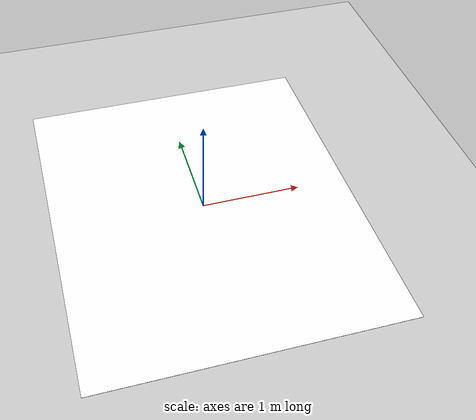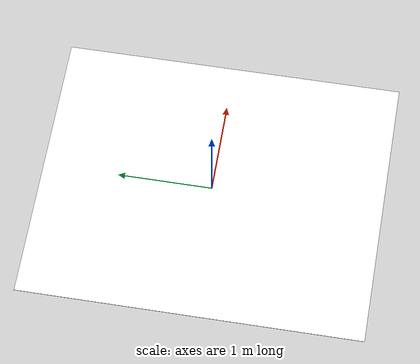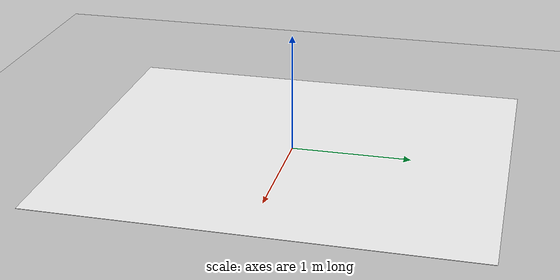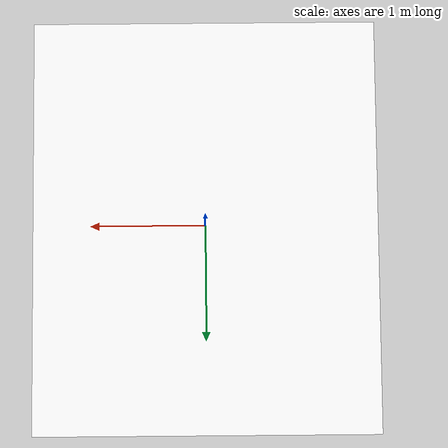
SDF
<sdf version='1.10'>
  <world name='linefollow'>
    <physics name='1ms' type='ignored'>
      <max_step_size>0.001</max_step_size>
      <real_time_factor>1</real_time_factor>
      <real_time_update_rate>1000</real_time_update_rate>
    </physics>
    <plugin name='gz::sim::systems::Physics' filename='gz-sim-physics-system'/>
    <plugin name='gz::sim::systems::UserCommands' filename='gz-sim-user-commands-system'/>
    <plugin name='gz::sim::systems::SceneBroadcaster' filename='gz-sim-scene-broadcaster-system'/>
    <plugin name='gz::sim::systems::Contact' filename='gz-sim-contact-system'/>
    <gravity>0 0 -9.8</gravity>
    <magnetic_field>6e-06 2.3e-05 -4.2e-05</magnetic_field>
    <atmosphere type='adiabatic'/>
    <scene>
      <ambient>0.4 0.4 0.4 1</ambient>
      <background>0.7 0.7 0.7 1</background>
      <shadows>true</shadows>
    </scene>

    <!-- Ground Plane -->
    <model name='ground_plane'>
      <static>true</static>
      <link name='link'>
        <collision name='collision'>
          <geometry>
            <plane>
              <normal>0 0 1</normal>
              <size>100 100</size>
            </plane>
          </geometry>
          <surface>
            <friction>
              <ode>
                <mu>100</mu>
                <mu2>50</mu2>
              </ode>
            </friction>
            <bounce/>
            <contact/>
          </surface>
        </collision>
        <visual name='visual'>
          <geometry>
            <plane>
              <normal>0 0 1</normal>
              <size>100 100</size>
            </plane>
          </geometry>
          <material>
            <ambient>0.8 0.8 0.8 1</ambient>
            <diffuse>0.8 0.8 0.8 1</diffuse>
            <specular>0.8 0.8 0.8 1</specular>
          </material>
        </visual>
        <pose>0 0 0 0 0 0</pose>
      </link>
      <pose>0 0 0 0 0 0</pose>
    </model>

    <!-- Sun Light -->
    <light name='sun' type='directional'>
      <pose>0 0 10 0 0 0</pose>
      <cast_shadows>true</cast_shadows>
      <intensity>1</intensity>
      <direction>-0.5 0.1 -0.9</direction>
      <diffuse>0.8 0.8 0.8 1</diffuse>
      <specular>0.2 0.2 0.2 1</specular>
      <attenuation>
        <range>1000</range>
        <linear>0.01</linear>
        <constant>0.9</constant>
        <quadratic>0.001</quadratic>
      </attenuation>
    </light>

    <!-- Line Follow Track - Textured Plane -->
    <!-- Track size: 3m x 3.6m (matches image aspect ratio 1313:1575) -->
    <model name='line_follow_track'>
      <static>true</static>
      <pose>0 0 0.001 0 0 0</pose>
      <link name='link'>
        <visual name='visual'>
          <geometry>
            <plane>
              <normal>0 0 1</normal>
              <size>3 3.6</size>
            </plane>
          </geometry>
          <material>
            <ambient>1 1 1 1</ambient>
            <diffuse>1 1 1 1</diffuse>
            <specular>0.1 0.1 0.1 1</specular>
            <pbr>
              <metal>
                <albedo_map>/home/mg/linefollower_ws/install/linebot/share/linebot/meshes/easy.png</albedo_map>
              </metal>
            </pbr>
          </material>
        </visual>
        <collision name='collision'>
          <geometry>
            <plane>
              <normal>0 0 1</normal>
              <size>3 3.6</size>
            </plane>
          </geometry>
          <surface>
            <friction>
              <ode>
                <mu>100</mu>
                <mu2>50</mu2>
              </ode>
            </friction>
          </surface>
        </collision>
      </link>
    </model>

  </world>
</sdf>
